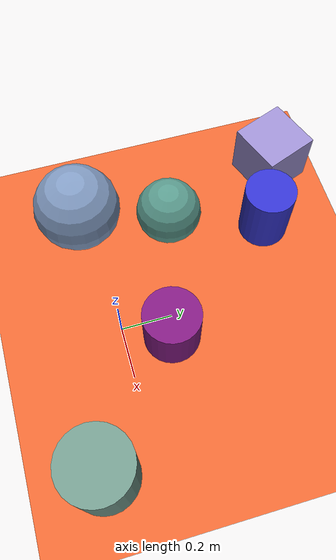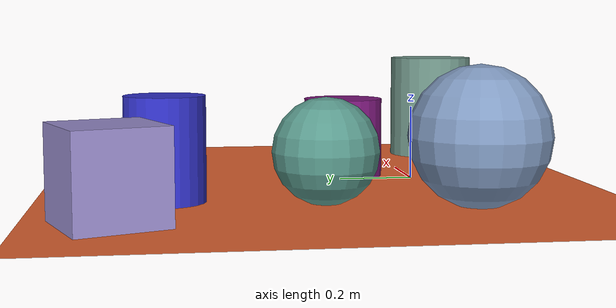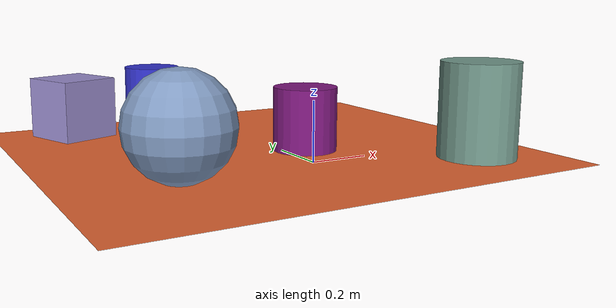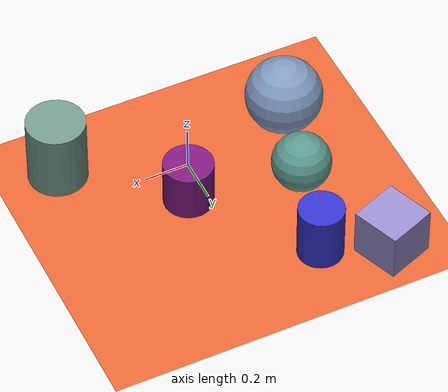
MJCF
<mujoco>
   <asset>
<texture type="skybox" builtin="gradient" rgb1="0.7 0.2 0.5" rgb2="0.7 0.5 0.8" width="256" height="256"/>
<texture name="flat_0" builtin="flat" rgb1="0.2 0.2 0.8" rgb2="0.2 0.2 0.8"  width="200" height="200"/>
<texture name="flat_1" builtin="flat" rgb1="0.5 0.1 0.5" rgb2="0.5 0.1 0.5"  width="200" height="200"/>
<texture name="gradient_2" builtin="gradient" rgb1="0.0 0.5 0.7" rgb2="0.7 0.7 0.4" width="200" height="200"/>
<texture name="gradient_3" builtin="gradient" rgb1="0.3 0.3 0.2" rgb2="0.6 0.9 0.9" width="200" height="200"/>
<texture name="checker_4" builtin="checker" rgb1="0.3 0.5 0.7" rgb2="0.9 0.6 0.9" width="200" height="200"/>
<texture name="checker_5" builtin="checker" rgb1="0.9 0.6 1.0" rgb2="0.1 0.6 0.5" width="200" height="200"/><material name="flat_0_mat" reflectance="0" texture="flat_0" texuniform="true"/>
<material name="flat_1_mat" reflectance="0" texture="flat_1" texuniform="true"/>
<material name="gradient_2_mat" reflectance="0" texture="gradient_2" texuniform="true"/>
<material name="gradient_3_mat" reflectance="0" texture="gradient_3" texuniform="true"/>
<material name="checker_4_mat" reflectance="0" texrepeat="9 9" texture="checker_4" texuniform="false" />
<material name="checker_5_mat" reflectance="0" texrepeat="5 5" texture="checker_5" texuniform="false" />
   </asset>

   <worldbody>
      <light diffuse=".9 .9 .9" pos="0 0 3" dir="0 0 -1"/>
     <geom type="plane" size="1 1 0.1" rgba="0.9 0.4 0.2 1"/>
<geom type="cylinder" pos="-0.29 0.68 0.13" size="0.1 0.13 0.13" material="flat_0_mat" euler="0 0 5" />
<geom type="cylinder" pos="0.08 0.18 0.11" size="0.11 0.11 0.11" material="flat_1_mat" euler="0 0 32" />
<geom type="sphere" pos="-0.39 0.3 0.13" size="0.13 0.13 0.13" material="gradient_2_mat" euler="0 0 70" />
<geom type="cylinder" pos="0.52 -0.19 0.16" size="0.13 0.16 0.16" material="gradient_3_mat" euler="0 0 45" />
<geom type="box" pos="-0.56 0.8 0.11" size="0.11 0.11 0.11" material="checker_4_mat" euler="0 0 21" />
<geom type="sphere" pos="-0.48 -0.05 0.17" size="0.17 0.17 0.17" material="checker_5_mat" euler="0 0 36" /><camera euler="60 0 180" fovy="60" name="camera1" pos="-0.2 -1.5 1"></camera>   </worldbody>
</mujoco>
